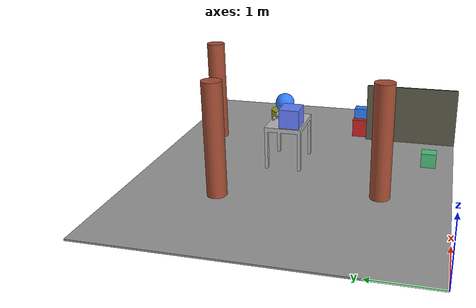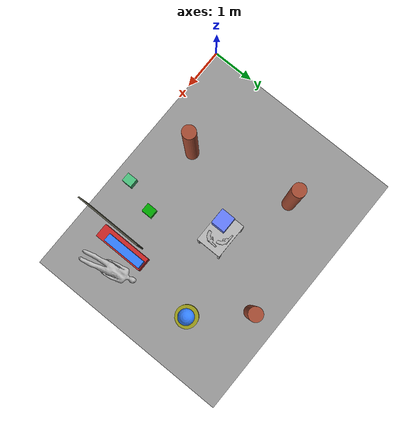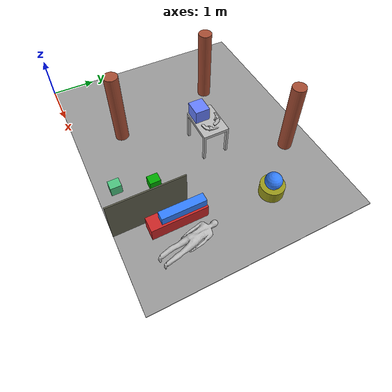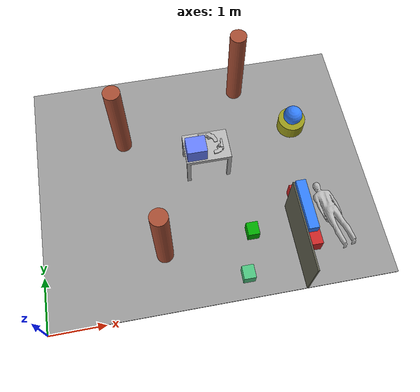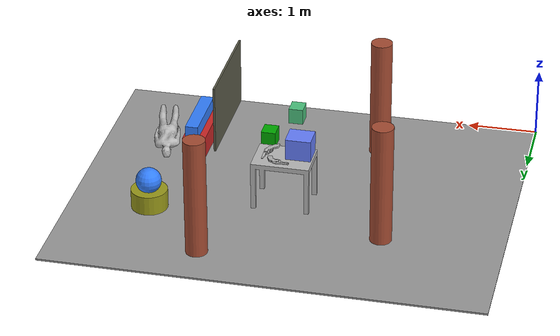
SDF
<sdf version="1.7">
 <world name="lab_real">
  <light name="sun" type="directional">
   <pose>0 0 10 0 -0 0</pose>
   <diffuse>0.8 0.8 0.8 1</diffuse>
   <specular>0.2 0.2 0.2 1</specular>
   <attenuation>
    <range>1000</range>
    <constant>0.9</constant>
    <linear>0.01</linear>
    <quadratic>0.001</quadratic>
   </attenuation>
   <direction>-0.5 0.1 -0.9</direction>
   <spot><inner_angle>0</inner_angle><outer_angle>0</outer_angle><falloff>0</falloff></spot>
  </light>
  <gravity>0 0 -9.8</gravity>
  <magnetic_field>6e-06 2.3e-05 -4.2e-05</magnetic_field>
  <atmosphere type="adiabatic"/>
  <physics type="ode">
   <max_step_size>0.001</max_step_size>
   <real_time_factor>1</real_time_factor>
   <real_time_update_rate>1000</real_time_update_rate>
  </physics>
  <scene><ambient>0.4 0.4 0.4 1</ambient><background>0.7 0.7 0.7 1</background><shadows>1</shadows></scene>
  <spherical_coordinates>
   <surface_model>EARTH_WGS84</surface_model>
   <latitude_deg>0</latitude_deg>
   <longitude_deg>0</longitude_deg>
   <elevation>0</elevation>
   <heading_deg>0</heading_deg>
  </spherical_coordinates>
  <include><uri>model://lab_base</uri></include>
  <plugin name="ros_interface_plugin" filename="librotors_gazebo_ros_interface_plugin.so"/>
  <plugin name="gazebo_gt_plugin" filename="libgazebo_gt.so"/>
 </world>
</sdf>

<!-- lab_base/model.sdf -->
<sdf version='1.7'>
  <model name='lab_base'>
    <link name='link_0'>
      <inertial>
        <mass>0.0486805</mass>
        <inertia>
          <ixx>0.00064897</ixx>
          <ixy>0</ixy>
          <ixz>0</ixz>
          <iyy>0.00064897</iyy>
          <iyz>0</iyz>
          <izz>0.00064897</izz>
        </inertia>
        <pose>0 0 0 0 -0 0</pose>
      </inertial>
      <pose>5.02238 3.25948 0.425093 0 -0 0</pose>
      <gravity>1</gravity>
      <self_collide>0</self_collide>
      <kinematic>0</kinematic>
      <enable_wind>0</enable_wind>
      <visual name='visual'>
        <pose>0 0 0 0 -0 0</pose>
        <geometry>
          <sphere>
            <radius>0.18256</radius>
          </sphere>
        </geometry>
        <material>
          <lighting>1</lighting>
          <script>
            <uri>file://media/materials/scripts/gazebo.material</uri>
            <name>Gazebo/Grey</name>
          </script>
          <shader type='pixel'>
            <normal_map>__default__</normal_map>
          </shader>
          <ambient>0.2 0.5 1 1</ambient>
          <diffuse>0.2 0.5 1 1</diffuse>
          <specular>0.01 0.01 0.01 1</specular>
          <emissive>0 0 0 1</emissive>
        </material>
        <transparency>0</transparency>
        <cast_shadows>1</cast_shadows>
      </visual>
      <collision name='collision'>
        <laser_retro>0</laser_retro>
        <max_contacts>10</max_contacts>
        <pose>0 0 0 0 -0 0</pose>
        <geometry>
          <sphere>
            <radius>0.18256</radius>
          </sphere>
        </geometry>
        <surface>
          <friction>
            <ode>
              <mu>1</mu>
              <mu2>1</mu2>
              <fdir1>0 0 0</fdir1>
              <slip1>0</slip1>
              <slip2>0</slip2>
            </ode>
            <torsional>
              <coefficient>1</coefficient>
              <patch_radius>0</patch_radius>
              <surface_radius>0</surface_radius>
              <use_patch_radius>1</use_patch_radius>
              <ode>
                <slip>0</slip>
              </ode>
            </torsional>
          </friction>
          <bounce>
            <restitution_coefficient>0</restitution_coefficient>
            <threshold>1e+06</threshold>
          </bounce>
          <contact>
            <collide_without_contact>0</collide_without_contact>
            <collide_without_contact_bitmask>1</collide_without_contact_bitmask>
            <collide_bitmask>1</collide_bitmask>
            <ode>
              <soft_cfm>0</soft_cfm>
              <soft_erp>0.2</soft_erp>
              <kp>1e+13</kp>
              <kd>1</kd>
              <max_vel>0.01</max_vel>
              <min_depth>0</min_depth>
            </ode>
            <bullet>
              <split_impulse>1</split_impulse>
              <split_impulse_penetration_threshold>-0.01</split_impulse_penetration_threshold>
              <soft_cfm>0</soft_cfm>
              <soft_erp>0.2</soft_erp>
              <kp>1e+13</kp>
              <kd>1</kd>
            </bullet>
          </contact>
        </surface>
      </collision>
    </link>
    <link name='link_1'>
      <inertial>
        <mass>0.758123</mass>
        <inertia>
          <ixx>1.52606</ixx>
          <ixy>0</ixy>
          <ixz>0</ixz>
          <iyy>2.40105</iyy>
          <iyz>0</iyz>
          <izz>3.92704</izz>
        </inertia>
        <pose>0 0 0 0 -0 0</pose>
      </inertial>
      <pose>3.0758 2.46292 0 -3.14159 0 0</pose>
      <gravity>1</gravity>
      <self_collide>0</self_collide>
      <kinematic>0</kinematic>
      <enable_wind>0</enable_wind>
      <visual name='visual'>
        <pose>0 0 0 0 -0 0</pose>
        <geometry>
          <box>
            <size>6.16479 4.91475 0.024663</size>
          </box>
        </geometry>
        <material>
          <lighting>1</lighting>
          <script>
            <uri>file://media/materials/scripts/gazebo.material</uri>
            <name>Gazebo/Grey</name>
          </script>
          <shader type='pixel'>
            <normal_map>__default__</normal_map>
          </shader>
          <emissive>0 0 0 1</emissive>
          <ambient>0.3 0.3 0.3 1</ambient>
          <diffuse>0.7 0.7 0.7 1</diffuse>
          <specular>0.01 0.01 0.01 1</specular>
        </material>
        <transparency>0</transparency>
        <cast_shadows>1</cast_shadows>
      </visual>
      <collision name='collision'>
        <laser_retro>0</laser_retro>
        <max_contacts>10</max_contacts>
        <pose>0 0 0 0 -0 0</pose>
        <geometry>
          <box>
            <size>6.16479 4.91475 0.024663</size>
          </box>
        </geometry>
        <surface>
          <friction>
            <ode>
              <mu>1</mu>
              <mu2>1</mu2>
              <fdir1>0 0 0</fdir1>
              <slip1>0</slip1>
              <slip2>0</slip2>
            </ode>
            <torsional>
              <coefficient>1</coefficient>
              <patch_radius>0</patch_radius>
              <surface_radius>0</surface_radius>
              <use_patch_radius>1</use_patch_radius>
              <ode>
                <slip>0</slip>
              </ode>
            </torsional>
          </friction>
          <bounce>
            <restitution_coefficient>0</restitution_coefficient>
            <threshold>1e+06</threshold>
          </bounce>
          <contact>
            <collide_without_contact>0</collide_without_contact>
            <collide_without_contact_bitmask>1</collide_without_contact_bitmask>
            <collide_bitmask>1</collide_bitmask>
            <ode>
              <soft_cfm>0</soft_cfm>
              <soft_erp>0.2</soft_erp>
              <kp>1e+13</kp>
              <kd>1</kd>
              <max_vel>0.01</max_vel>
              <min_depth>0</min_depth>
            </ode>
            <bullet>
              <split_impulse>1</split_impulse>
              <split_impulse_penetration_threshold>-0.01</split_impulse_penetration_threshold>
              <soft_cfm>0</soft_cfm>
              <soft_erp>0.2</soft_erp>
              <kp>1e+13</kp>
              <kd>1</kd>
            </bullet>
          </contact>
        </surface>
      </collision>
    </link>
    <link name='link_1_clone_clone'>
      <inertial>
        <mass>0.0463262</mass>
        <inertia>
          <ixx>0.00964904</ixx>
          <ixy>0</ixy>
          <ixz>0</ixz>
          <iyy>0.0040622</iyy>
          <iyz>0</iyz>
          <izz>0.0137051</izz>
        </inertia>
        <pose>0 0 0 0 -0 0</pose>
      </inertial>
      <pose>4.50356 0.791954 0.525149 3.14159 1.57079 3.14159</pose>
      <gravity>1</gravity>
      <self_collide>0</self_collide>
      <kinematic>0</kinematic>
      <enable_wind>0</enable_wind>
      <visual name='visual'>
        <pose>0 0 0 0 -0 0</pose>
        <geometry>
          <box>
            <size>1.0254 1.58071 0.02808</size>
          </box>
        </geometry>
        <material>
          <lighting>1</lighting>
          <script>
            <uri>file://media/materials/scripts/gazebo.material</uri>
            <name>Gazebo/Grey</name>
          </script>
          <shader type='pixel'>
            <normal_map>__default__</normal_map>
          </shader>
          <emissive>0 0 0 1</emissive>
          <diffuse>0.367 0.367 0.3 0</diffuse>
          <ambient>0.367 0.367 0.3 1</ambient>
          <specular>0.01 0.01 0.01 1</specular>
        </material>
        <transparency>0</transparency>
        <cast_shadows>1</cast_shadows>
      </visual>
      <collision name='collision'>
        <laser_retro>0</laser_retro>
        <max_contacts>10</max_contacts>
        <pose>0 0 0 0 -0 0</pose>
        <geometry>
          <box>
            <size>1.0254 1.58071 0.02808</size>
          </box>
        </geometry>
        <surface>
          <friction>
            <ode>
              <mu>1</mu>
              <mu2>1</mu2>
              <fdir1>0 0 0</fdir1>
              <slip1>0</slip1>
              <slip2>0</slip2>
            </ode>
            <torsional>
              <coefficient>1</coefficient>
              <patch_radius>0</patch_radius>
              <surface_radius>0</surface_radius>
              <use_patch_radius>1</use_patch_radius>
              <ode>
                <slip>0</slip>
              </ode>
            </torsional>
          </friction>
          <bounce>
            <restitution_coefficient>0</restitution_coefficient>
            <threshold>1e+06</threshold>
          </bounce>
          <contact>
            <collide_without_contact>0</collide_without_contact>
            <collide_without_contact_bitmask>1</collide_without_contact_bitmask>
            <collide_bitmask>1</collide_bitmask>
            <ode>
              <soft_cfm>0</soft_cfm>
              <soft_erp>0.2</soft_erp>
              <kp>1e+13</kp>
              <kd>1</kd>
              <max_vel>0.01</max_vel>
              <min_depth>0</min_depth>
            </ode>
            <bullet>
              <split_impulse>1</split_impulse>
              <split_impulse_penetration_threshold>-0.01</split_impulse_penetration_threshold>
              <soft_cfm>0</soft_cfm>
              <soft_erp>0.2</soft_erp>
              <kp>1e+13</kp>
              <kd>1</kd>
            </bullet>
          </contact>
        </surface>
      </collision>
    </link>
    <link name='link_3'>
      <inertial>
        <mass>0</mass>
        <inertia>
          <ixx>0</ixx>
          <ixy>0</ixy>
          <ixz>0</ixz>
          <iyy>0</iyy>
          <iyz>0</iyz>
          <izz>0</izz>
        </inertia>
        <pose>0 0 0 0 -0 0</pose>
      </inertial>
      <pose>3.00126 2.61431 0.867526 0 -0 0</pose>
      <self_collide>0</self_collide>
      <enable_wind>0</enable_wind>
      <kinematic>0</kinematic>
      <gravity>1</gravity>
      <visual name='visual'>
        <pose>0 0 0 0 -0 0</pose>
        <geometry>
          <box>
            <size>0.362033 0.326716 0.321011</size>
          </box>
        </geometry>
        <material>
          <lighting>1</lighting>
          <script>
            <uri>file://media/materials/scripts/gazebo.material</uri>
            <name>Gazebo/Grey</name>
          </script>
          <shader type='pixel'>
            <normal_map>__default__</normal_map>
          </shader>
          <emissive>0 0 0 1</emissive>
          <ambient>0.4 0.5 1 1</ambient>
          <diffuse>0.4 0.5 1 1</diffuse>
          <specular>0.01 0.01 0.01 1</specular>
        </material>
        <transparency>0</transparency>
        <cast_shadows>1</cast_shadows>
      </visual>
      <collision name='collision'>
        <laser_retro>0</laser_retro>
        <max_contacts>10</max_contacts>
        <pose>0 0 0 0 -0 0</pose>
        <geometry>
          <box>
            <size>0.362033 0.326716 0.321011</size>
          </box>
        </geometry>
        <surface>
          <friction>
            <ode>
              <mu>1</mu>
              <mu2>1</mu2>
              <fdir1>0 0 0</fdir1>
              <slip1>0</slip1>
              <slip2>0</slip2>
            </ode>
            <torsional>
              <coefficient>1</coefficient>
              <patch_radius>0</patch_radius>
              <surface_radius>0</surface_radius>
              <use_patch_radius>1</use_patch_radius>
              <ode>
                <slip>0</slip>
              </ode>
            </torsional>
          </friction>
          <bounce>
            <restitution_coefficient>0</restitution_coefficient>
            <threshold>1e+06</threshold>
          </bounce>
          <contact>
            <collide_without_contact>0</collide_without_contact>
            <collide_without_contact_bitmask>1</collide_without_contact_bitmask>
            <collide_bitmask>1</collide_bitmask>
            <ode>
              <soft_cfm>0</soft_cfm>
              <soft_erp>0.2</soft_erp>
              <kp>1e+13</kp>
              <kd>1</kd>
              <max_vel>0.01</max_vel>
              <min_depth>0</min_depth>
            </ode>
            <bullet>
              <split_impulse>1</split_impulse>
              <split_impulse_penetration_threshold>-0.01</split_impulse_penetration_threshold>
              <soft_cfm>0</soft_cfm>
              <soft_erp>0.2</soft_erp>
              <kp>1e+13</kp>
              <kd>1</kd>
            </bullet>
          </contact>
        </surface>
      </collision>
    </link>
    <link name='link_3_clone'>
      <inertial>
        <mass>0.0326408</mass>
        <inertia>
          <ixx>0.00251461</ixx>
          <ixy>0</ixy>
          <ixz>0</ixz>
          <iyy>0.000188212</iyy>
          <iyz>0</iyz>
          <izz>0.00251637</izz>
        </inertia>
        <pose>0 0 0 0 -0 0</pose>
      </inertial>
      <pose>4.78027 1.3623 0.424936 0 -0 0</pose>
      <self_collide>0</self_collide>
      <enable_wind>0</enable_wind>
      <kinematic>0</kinematic>
      <gravity>1</gravity>
      <visual name='visual'>
        <pose>0 0 0 0 -0 0</pose>
        <geometry>
          <box>
            <size>0.186871 0.9435 0.185129</size>
          </box>
        </geometry>
        <material>
          <lighting>1</lighting>
          <script>
            <uri>file://media/materials/scripts/gazebo.material</uri>
            <name>Gazebo/Grey</name>
          </script>
          <shader type='pixel'>
            <normal_map>__default__</normal_map>
          </shader>
          <emissive>0 0 0 1</emissive>
          <ambient>0.2 0.5 1 1</ambient>
          <diffuse>0.2 0.5 1 1</diffuse>
          <specular>0.01 0.01 0.01 1</specular>
        </material>
        <transparency>0</transparency>
        <cast_shadows>1</cast_shadows>
      </visual>
      <collision name='collision'>
        <laser_retro>0</laser_retro>
        <max_contacts>10</max_contacts>
        <pose>0 0 0 0 -0 0</pose>
        <geometry>
          <box>
            <size>0.186871 0.9435 0.185129</size>
          </box>
        </geometry>
        <surface>
          <friction>
            <ode>
              <mu>1</mu>
              <mu2>1</mu2>
              <fdir1>0 0 0</fdir1>
              <slip1>0</slip1>
              <slip2>0</slip2>
            </ode>
            <torsional>
              <coefficient>1</coefficient>
              <patch_radius>0</patch_radius>
              <surface_radius>0</surface_radius>
              <use_patch_radius>1</use_patch_radius>
              <ode>
                <slip>0</slip>
              </ode>
            </torsional>
          </friction>
          <bounce>
            <restitution_coefficient>0</restitution_coefficient>
            <threshold>1e+06</threshold>
          </bounce>
          <contact>
            <collide_without_contact>0</collide_without_contact>
            <collide_without_contact_bitmask>1</collide_without_contact_bitmask>
            <collide_bitmask>1</collide_bitmask>
            <ode>
              <soft_cfm>0</soft_cfm>
              <soft_erp>0.2</soft_erp>
              <kp>1e+13</kp>
              <kd>1</kd>
              <max_vel>0.01</max_vel>
              <min_depth>0</min_depth>
            </ode>
            <bullet>
              <split_impulse>1</split_impulse>
              <split_impulse_penetration_threshold>-0.01</split_impulse_penetration_threshold>
              <soft_cfm>0</soft_cfm>
              <soft_erp>0.2</soft_erp>
              <kp>1e+13</kp>
              <kd>1</kd>
            </bullet>
          </contact>
        </surface>
      </collision>
    </link>
    <link name='link_4_clone'>
      <inertial>
        <mass>0.0757916</mass>
        <inertia>
          <ixx>0.0017771</ixx>
          <ixy>0</ixy>
          <ixz>0</ixz>
          <iyy>0.0017771</iyy>
          <iyz>0</iyz>
          <izz>0.00256166</izz>
        </inertia>
        <pose>0 0 0 0 -0 0</pose>
      </inertial>
      <pose>5.01785 3.26172 0.15287 0 -0 0</pose>
      <self_collide>0</self_collide>
      <enable_wind>0</enable_wind>
      <kinematic>0</kinematic>
      <gravity>1</gravity>
      <visual name='visual'>
        <pose>0 0 0 0 -0 0</pose>
        <geometry>
          <cylinder>
            <radius>0.259995</radius>
            <length>0.280312</length>
          </cylinder>
        </geometry>
        <material>
          <lighting>1</lighting>
          <script>
            <uri>file://media/materials/scripts/gazebo.material</uri>
            <name>Gazebo/Grey</name>
          </script>
          <shader type='pixel'>
            <normal_map>__default__</normal_map>
          </shader>
          <emissive>0 0 0 1</emissive>
          <ambient>0.6 0.6 0.1 0</ambient>
          <diffuse>0.6 0.6 0.1 1</diffuse>
          <specular>0.01 0.01 0.01 1</specular>
        </material>
        <transparency>0</transparency>
        <cast_shadows>1</cast_shadows>
      </visual>
      <collision name='collision'>
        <laser_retro>0</laser_retro>
        <max_contacts>10</max_contacts>
        <pose>0 0 0 0 -0 0</pose>
        <geometry>
          <cylinder>
            <radius>0.259995</radius>
            <length>0.280312</length>
          </cylinder>
        </geometry>
        <surface>
          <friction>
            <ode>
              <mu>1</mu>
              <mu2>1</mu2>
              <fdir1>0 0 0</fdir1>
              <slip1>0</slip1>
              <slip2>0</slip2>
            </ode>
            <torsional>
              <coefficient>1</coefficient>
              <patch_radius>0</patch_radius>
              <surface_radius>0</surface_radius>
              <use_patch_radius>1</use_patch_radius>
              <ode>
                <slip>0</slip>
              </ode>
            </torsional>
          </friction>
          <bounce>
            <restitution_coefficient>0</restitution_coefficient>
            <threshold>1e+06</threshold>
          </bounce>
          <contact>
            <collide_without_contact>0</collide_without_contact>
            <collide_without_contact_bitmask>1</collide_without_contact_bitmask>
            <collide_bitmask>1</collide_bitmask>
            <ode>
              <soft_cfm>0</soft_cfm>
              <soft_erp>0.2</soft_erp>
              <kp>1e+13</kp>
              <kd>1</kd>
              <max_vel>0.01</max_vel>
              <min_depth>0</min_depth>
            </ode>
            <bullet>
              <split_impulse>1</split_impulse>
              <split_impulse_penetration_threshold>-0.01</split_impulse_penetration_threshold>
              <soft_cfm>0</soft_cfm>
              <soft_erp>0.2</soft_erp>
              <kp>1e+13</kp>
              <kd>1</kd>
            </bullet>
          </contact>
        </surface>
      </collision>
    </link>
    <link name='link_5'>
      <inertial>
        <mass>0.123138</mass>
        <inertia>
          <ixx>0.0157175</ixx>
          <ixy>0</ixy>
          <ixz>0</ixz>
          <iyy>0.00211369</iyy>
          <iyz>0</iyz>
          <izz>0.0157573</izz>
        </inertia>
        <pose>0 0 0 0 -0 0</pose>
      </inertial>
      <pose>4.753 1.25194 0.170259 0 -0 0</pose>
      <self_collide>0</self_collide>
      <enable_wind>0</enable_wind>
      <kinematic>0</kinematic>
      <gravity>1</gravity>
      <visual name='visual'>
        <pose>0 0 0 0 -0 0</pose>
        <geometry>
          <box>
            <size>0.323928 1.1961 0.317889</size>
          </box>
        </geometry>
        <material>
          <lighting>1</lighting>
          <script>
            <uri>file://media/materials/scripts/gazebo.material</uri>
            <name>Gazebo/Red</name>
          </script>
          <shader type='pixel'>
            <normal_map>__default__</normal_map>
          </shader>
          <emissive>0 0 0 1</emissive>
          <ambient>1 0.2 0 1</ambient>
          <diffuse>1 0.2 0 1</diffuse>
          <specular>0.01 0.01 0.01 1</specular>
        </material>
        <transparency>0</transparency>
        <cast_shadows>1</cast_shadows>
      </visual>
      <collision name='collision'>
        <laser_retro>0</laser_retro>
        <max_contacts>10</max_contacts>
        <pose>0 0 0 0 -0 0</pose>
        <geometry>
          <box>
            <size>0.323928 1.1961 0.317889</size>
          </box>
        </geometry>
        <surface>
          <friction>
            <ode>
              <mu>1</mu>
              <mu2>1</mu2>
              <fdir1>0 0 0</fdir1>
              <slip1>0</slip1>
              <slip2>0</slip2>
            </ode>
            <torsional>
              <coefficient>1</coefficient>
              <patch_radius>0</patch_radius>
              <surface_radius>0</surface_radius>
              <use_patch_radius>1</use_patch_radius>
              <ode>
                <slip>0</slip>
              </ode>
            </torsional>
          </friction>
          <bounce>
            <restitution_coefficient>0</restitution_coefficient>
            <threshold>1e+06</threshold>
          </bounce>
          <contact>
            <collide_without_contact>0</collide_without_contact>
            <collide_without_contact_bitmask>1</collide_without_contact_bitmask>
            <collide_bitmask>1</collide_bitmask>
            <ode>
              <soft_cfm>0</soft_cfm>
              <soft_erp>0.2</soft_erp>
              <kp>1e+13</kp>
              <kd>1</kd>
              <max_vel>0.01</max_vel>
              <min_depth>0</min_depth>
            </ode>
            <bullet>
              <split_impulse>1</split_impulse>
              <split_impulse_penetration_threshold>-0.01</split_impulse_penetration_threshold>
              <soft_cfm>0</soft_cfm>
              <soft_erp>0.2</soft_erp>
              <kp>1e+13</kp>
              <kd>1</kd>
            </bullet>
          </contact>
        </surface>
      </collision>
    </link>
    <link name='link_6'>
      <inertial>
        <mass>0.0122647</mass>
        <inertia>
          <ixx>0.00011764</ixx>
          <ixy>0</ixy>
          <ixz>0</ixz>
          <iyy>0.00010442</iyy>
          <iyz>0</iyz>
          <izz>0.00010648</izz>
        </inertia>
        <pose>0 0 0 0 -0 0</pose>
      </inertial>
      <pose>3.76938 1.17487 0.13075 0 -0 0</pose>
      <self_collide>0</self_collide>
      <enable_wind>0</enable_wind>
      <kinematic>0</kinematic>
      <gravity>1</gravity>
      <visual name='visual'>
        <pose>0 0 0 0 -0 0</pose>
        <geometry>
          <box>
            <size>0.213598 0.241991 0.237785</size>
          </box>
        </geometry>
        <material>
          <lighting>1</lighting>
          <script>
            <uri>file://media/materials/scripts/gazebo.material</uri>
            <name>Gazebo/Grey</name>
          </script>
          <shader type='pixel'>
            <normal_map>__default__</normal_map>
          </shader>
          <emissive>0 0 0 1</emissive>
          <ambient>0 0.667 0 0</ambient>
          <diffuse>0 0.667 0 1</diffuse>
          <specular>0.01 0.01 0.01 1</specular>
        </material>
        <transparency>0</transparency>
        <cast_shadows>1</cast_shadows>
      </visual>
      <collision name='collision'>
        <laser_retro>0</laser_retro>
        <max_contacts>10</max_contacts>
        <pose>0 0 0 0 -0 0</pose>
        <geometry>
          <box>
            <size>0.213598 0.241991 0.237785</size>
          </box>
        </geometry>
        <surface>
          <friction>
            <ode>
              <mu>1</mu>
              <mu2>1</mu2>
              <fdir1>0 0 0</fdir1>
              <slip1>0</slip1>
              <slip2>0</slip2>
            </ode>
            <torsional>
              <coefficient>1</coefficient>
              <patch_radius>0</patch_radius>
              <surface_radius>0</surface_radius>
              <use_patch_radius>1</use_patch_radius>
              <ode>
                <slip>0</slip>
              </ode>
            </torsional>
          </friction>
          <bounce>
            <restitution_coefficient>0</restitution_coefficient>
            <threshold>1e+06</threshold>
          </bounce>
          <contact>
            <collide_without_contact>0</collide_without_contact>
            <collide_without_contact_bitmask>1</collide_without_contact_bitmask>
            <collide_bitmask>1</collide_bitmask>
            <ode>
              <soft_cfm>0</soft_cfm>
              <soft_erp>0.2</soft_erp>
              <kp>1e+13</kp>
              <kd>1</kd>
              <max_vel>0.01</max_vel>
              <min_depth>0</min_depth>
            </ode>
            <bullet>
              <split_impulse>1</split_impulse>
              <split_impulse_penetration_threshold>-0.01</split_impulse_penetration_threshold>
              <soft_cfm>0</soft_cfm>
              <soft_erp>0.2</soft_erp>
              <kp>1e+13</kp>
              <kd>1</kd>
            </bullet>
          </contact>
        </surface>
      </collision>
    </link>
    <link name='link_6_clone'>
      <inertial>
        <mass>0.0122647</mass>
        <inertia>
          <ixx>0.00011764</ixx>
          <ixy>0</ixy>
          <ixz>0</ixz>
          <iyy>0.00010442</iyy>
          <iyz>0</iyz>
          <izz>0.00010648</izz>
        </inertia>
        <pose>0 0 0 0 -0 0</pose>
      </inertial>
      <pose>3.52606 0.408481 0.130799 0 -0 0</pose>
      <self_collide>0</self_collide>
      <enable_wind>0</enable_wind>
      <kinematic>0</kinematic>
      <gravity>1</gravity>
      <visual name='visual'>
        <pose>0 0 0 0 -0 0</pose>
        <geometry>
          <box>
            <size>0.213598 0.241991 0.237785</size>
          </box>
        </geometry>
        <material>
          <lighting>1</lighting>
          <script>
            <uri>file://media/materials/scripts/gazebo.material</uri>
            <name>Gazebo/Grey</name>
          </script>
          <shader type='pixel'>
            <normal_map>__default__</normal_map>
          </shader>
          <emissive>0 0 0 1</emissive>
          <ambient>0.4 0.767 0.498 0</ambient>
          <diffuse>0.3 0.767 0.498 1</diffuse>
          <specular>0.01 0.01 0.01 1</specular>
        </material>
        <transparency>0</transparency>
        <cast_shadows>1</cast_shadows>
      </visual>
      <collision name='collision'>
        <laser_retro>0</laser_retro>
        <max_contacts>10</max_contacts>
        <pose>0 0 0 0 -0 0</pose>
        <geometry>
          <box>
            <size>0.213598 0.241991 0.237785</size>
          </box>
        </geometry>
        <surface>
          <friction>
            <ode>
              <mu>1</mu>
              <mu2>1</mu2>
              <fdir1>0 0 0</fdir1>
              <slip1>0</slip1>
              <slip2>0</slip2>
            </ode>
            <torsional>
              <coefficient>1</coefficient>
              <patch_radius>0</patch_radius>
              <surface_radius>0</surface_radius>
              <use_patch_radius>1</use_patch_radius>
              <ode>
                <slip>0</slip>
              </ode>
            </torsional>
          </friction>
          <bounce>
            <restitution_coefficient>0</restitution_coefficient>
            <threshold>1e+06</threshold>
          </bounce>
          <contact>
            <collide_without_contact>0</collide_without_contact>
            <collide_without_contact_bitmask>1</collide_without_contact_bitmask>
            <collide_bitmask>1</collide_bitmask>
            <ode>
              <soft_cfm>0</soft_cfm>
              <soft_erp>0.2</soft_erp>
              <kp>1e+13</kp>
              <kd>1</kd>
              <max_vel>0.01</max_vel>
              <min_depth>0</min_depth>
            </ode>
            <bullet>
              <split_impulse>1</split_impulse>
              <split_impulse_penetration_threshold>-0.01</split_impulse_penetration_threshold>
              <soft_cfm>0</soft_cfm>
              <soft_erp>0.2</soft_erp>
              <kp>1e+13</kp>
              <kd>1</kd>
            </bullet>
          </contact>
        </surface>
      </collision>
    </link>
    <link name='pillar1'>
      <inertial>
        <mass>1</mass>
        <inertia>
          <ixx>0.145833</ixx>
          <ixy>0</ixy>
          <ixz>0</ixz>
          <iyy>0.145833</iyy>
          <iyz>0</iyz>
          <izz>0.125</izz>
        </inertia>
        <pose>0 0 0 0 -0 0</pose>
      </inertial>
      <self_collide>0</self_collide>
      <enable_wind>0</enable_wind>
      <kinematic>0</kinematic>
      <pose>2.15345 1.05205 0.847464 0 -0 0</pose>
      <gravity>1</gravity>
      <visual name='visual'>
        <geometry>
          <cylinder>
            <radius>0.153505</radius>
            <length>1.86852</length>
          </cylinder>
        </geometry>
        <material>
          <script>
            <name>Gazebo/Bricks</name>
            <uri>file://media/materials/scripts/gazebo.material</uri>
          </script>
          <shader type='pixel'>
            <normal_map>__default__</normal_map>
          </shader>
          <ambient>1 1 1 1</ambient>
          <diffuse>1 1 1 1</diffuse>
          <specular>0.2 0.2 0.2 1</specular>
          <emissive>0 0 0 1</emissive>
        </material>
        <pose>0 0 0 0 -0 0</pose>
        <transparency>0</transparency>
        <cast_shadows>1</cast_shadows>
      </visual>
      <collision name='collision'>
        <laser_retro>0</laser_retro>
        <max_contacts>10</max_contacts>
        <pose>0 0 0 0 -0 0</pose>
        <geometry>
          <cylinder>
            <radius>0.153505</radius>
            <length>1.86852</length>
          </cylinder>
        </geometry>
        <surface>
          <friction>
            <ode>
              <mu>1</mu>
              <mu2>1</mu2>
              <fdir1>0 0 0</fdir1>
              <slip1>0</slip1>
              <slip2>0</slip2>
            </ode>
            <torsional>
              <coefficient>1</coefficient>
              <patch_radius>0</patch_radius>
              <surface_radius>0</surface_radius>
              <use_patch_radius>1</use_patch_radius>
              <ode>
                <slip>0</slip>
              </ode>
            </torsional>
          </friction>
          <bounce>
            <restitution_coefficient>0</restitution_coefficient>
            <threshold>1e+06</threshold>
          </bounce>
          <contact>
            <collide_without_contact>0</collide_without_contact>
            <collide_without_contact_bitmask>1</collide_without_contact_bitmask>
            <collide_bitmask>1</collide_bitmask>
            <ode>
              <soft_cfm>0</soft_cfm>
              <soft_erp>0.2</soft_erp>
              <kp>1e+13</kp>
              <kd>1</kd>
              <max_vel>0.01</max_vel>
              <min_depth>0</min_depth>
            </ode>
            <bullet>
              <split_impulse>1</split_impulse>
              <split_impulse_penetration_threshold>-0.01</split_impulse_penetration_threshold>
              <soft_cfm>0</soft_cfm>
              <soft_erp>0.2</soft_erp>
              <kp>1e+13</kp>
              <kd>1</kd>
            </bullet>
          </contact>
        </surface>
      </collision>
    </link>
    <link name='pillar1_clone'>
      <inertial>
        <mass>1</mass>
        <inertia>
          <ixx>0.145833</ixx>
          <ixy>0</ixy>
          <ixz>0</ixz>
          <iyy>0.145833</iyy>
          <iyz>0</iyz>
          <izz>0.125</izz>
        </inertia>
        <pose>0 0 0 0 -0 0</pose>
      </inertial>
      <self_collide>0</self_collide>
      <enable_wind>0</enable_wind>
      <kinematic>0</kinematic>
      <pose>1.69476 3.43426 0.843943 0 -0 0</pose>
      <gravity>1</gravity>
      <visual name='visual'>
        <geometry>
          <cylinder>
            <radius>0.153505</radius>
            <length>1.86852</length>
          </cylinder>
        </geometry>
        <material>
          <script>
            <name>Gazebo/Bricks</name>
            <uri>file://media/materials/scripts/gazebo.material</uri>
          </script>
          <shader type='pixel'>
            <normal_map>__default__</normal_map>
          </shader>
          <ambient>1 1 1 1</ambient>
          <diffuse>1 1 1 1</diffuse>
          <specular>0.2 0.2 0.2 1</specular>
          <emissive>0 0 0 1</emissive>
        </material>
        <pose>0 0 0 0 -0 0</pose>
        <transparency>0</transparency>
        <cast_shadows>1</cast_shadows>
      </visual>
      <collision name='collision'>
        <laser_retro>0</laser_retro>
        <max_contacts>10</max_contacts>
        <pose>0 0 0 0 -0 0</pose>
        <geometry>
          <cylinder>
            <radius>0.153505</radius>
            <length>1.86852</length>
          </cylinder>
        </geometry>
        <surface>
          <friction>
            <ode>
              <mu>1</mu>
              <mu2>1</mu2>
              <fdir1>0 0 0</fdir1>
              <slip1>0</slip1>
              <slip2>0</slip2>
            </ode>
            <torsional>
              <coefficient>1</coefficient>
              <patch_radius>0</patch_radius>
              <surface_radius>0</surface_radius>
              <use_patch_radius>1</use_patch_radius>
              <ode>
                <slip>0</slip>
              </ode>
            </torsional>
          </friction>
          <bounce>
            <restitution_coefficient>0</restitution_coefficient>
            <threshold>1e+06</threshold>
          </bounce>
          <contact>
            <collide_without_contact>0</collide_without_contact>
            <collide_without_contact_bitmask>1</collide_without_contact_bitmask>
            <collide_bitmask>1</collide_bitmask>
            <ode>
              <soft_cfm>0</soft_cfm>
              <soft_erp>0.2</soft_erp>
              <kp>1e+13</kp>
              <kd>1</kd>
              <max_vel>0.01</max_vel>
              <min_depth>0</min_depth>
            </ode>
            <bullet>
              <split_impulse>1</split_impulse>
              <split_impulse_penetration_threshold>-0.01</split_impulse_penetration_threshold>
              <soft_cfm>0</soft_cfm>
              <soft_erp>0.2</soft_erp>
              <kp>1e+13</kp>
              <kd>1</kd>
            </bullet>
          </contact>
        </surface>
      </collision>
    </link>
    <link name='pillar1_clone_0'>
      <inertial>
        <mass>1</mass>
        <inertia>
          <ixx>0.145833</ixx>
          <ixy>0</ixy>
          <ixz>0</ixz>
          <iyy>0.145833</iyy>
          <iyz>0</iyz>
          <izz>0.125</izz>
        </inertia>
        <pose>0 0 0 0 -0 0</pose>
      </inertial>
      <self_collide>0</self_collide>
      <enable_wind>0</enable_wind>
      <kinematic>0</kinematic>
      <pose>4.07751 4.27025 0.816644 0 -0 0</pose>
      <gravity>1</gravity>
      <visual name='visual'>
        <geometry>
          <cylinder>
            <radius>0.153505</radius>
            <length>1.86852</length>
          </cylinder>
        </geometry>
        <material>
          <script>
            <name>Gazebo/Bricks</name>
            <uri>file://media/materials/scripts/gazebo.material</uri>
          </script>
          <shader type='pixel'>
            <normal_map>__default__</normal_map>
          </shader>
          <ambient>1 1 1 1</ambient>
          <diffuse>1 1 1 1</diffuse>
          <specular>0.2 0.2 0.2 1</specular>
          <emissive>0 0 0 1</emissive>
        </material>
        <pose>0 0 0 0 -0 0</pose>
        <transparency>0</transparency>
        <cast_shadows>1</cast_shadows>
      </visual>
      <collision name='collision'>
        <laser_retro>0</laser_retro>
        <max_contacts>10</max_contacts>
        <pose>0 0 0 0 -0 0</pose>
        <geometry>
          <cylinder>
            <radius>0.153505</radius>
            <length>1.86852</length>
          </cylinder>
        </geometry>
        <surface>
          <friction>
            <ode>
              <mu>1</mu>
              <mu2>1</mu2>
              <fdir1>0 0 0</fdir1>
              <slip1>0</slip1>
              <slip2>0</slip2>
            </ode>
            <torsional>
              <coefficient>1</coefficient>
              <patch_radius>0</patch_radius>
              <surface_radius>0</surface_radius>
              <use_patch_radius>1</use_patch_radius>
              <ode>
                <slip>0</slip>
              </ode>
            </torsional>
          </friction>
          <bounce>
            <restitution_coefficient>0</restitution_coefficient>
            <threshold>1e+06</threshold>
          </bounce>
          <contact>
            <collide_without_contact>0</collide_without_contact>
            <collide_without_contact_bitmask>1</collide_without_contact_bitmask>
            <collide_bitmask>1</collide_bitmask>
            <ode>
              <soft_cfm>0</soft_cfm>
              <soft_erp>0.2</soft_erp>
              <kp>1e+13</kp>
              <kd>1</kd>
              <max_vel>0.01</max_vel>
              <min_depth>0</min_depth>
            </ode>
            <bullet>
              <split_impulse>1</split_impulse>
              <split_impulse_penetration_threshold>-0.01</split_impulse_penetration_threshold>
              <soft_cfm>0</soft_cfm>
              <soft_erp>0.2</soft_erp>
              <kp>1e+13</kp>
              <kd>1</kd>
            </bullet>
          </contact>
        </surface>
      </collision>
    </link>
    <link name='gun_1'>
        <inertial>
          <pose>0 -0.1 0.95 0 -0 0</pose>
          <mass>80</mass>
          <inertia>
            <ixx>24.88</ixx>
            <ixy>0</ixy>
            <ixz>0</ixz>
            <iyy>25.73</iyy>
            <iyz>0</iyz>
            <izz>2.48</izz>
          </inertia>
        </inertial>
        <self_collide>0</self_collide>
        <enable_wind>0</enable_wind>
        <kinematic>0</kinematic>
        <visual name='visual'>
          <geometry>
            <mesh>
              <uri>model://gun/Gun.dae</uri>
              <scale>0.5 0.5 0.5</scale>
            </mesh>
            <pose>0 0 0.02 0.04 -0 0</pose>
          </geometry>
          <pose>0 0 0 0 -0 0</pose>
          <transparency>0</transparency>
          <cast_shadows>1</cast_shadows>
        </visual>
        <collision name='drugs'>
          <pose>0 0 0 0 -0 0</pose>
          <geometry>
            <box>
              <size>0.2 0.2 0.2</size>
            </box>
          </geometry>
          <max_contacts>10</max_contacts>
          <surface>
            <contact>
              <ode/>
            </contact>
            <bounce/>
            <friction>
              <torsional>
                <ode/>
              </torsional>
              <ode/>
            </friction>
          </surface>
        </collision>
      <pose>3.30005 2.89522 0.750704 -1.44394 0 0</pose>
    </link>
    <link name='gun_2'>
        <inertial>
          <pose>0 -0.1 0.95 0 -0 0</pose>
          <mass>80</mass>
          <inertia>
            <ixx>24.88</ixx>
            <ixy>0</ixy>
            <ixz>0</ixz>
            <iyy>25.73</iyy>
            <iyz>0</iyz>
            <izz>2.48</izz>
          </inertia>
        </inertial>
        <self_collide>0</self_collide>
        <enable_wind>0</enable_wind>
        <kinematic>0</kinematic>
        <visual name='visual'>
          <geometry>
            <mesh>
              <uri>model://gun/Gun.dae</uri>
              <scale>0.5 0.5 0.5</scale>
            </mesh>
            <pose>0 0 0.02 0.04 -0 0</pose>
          </geometry>
          <pose>0 0 0 0 -0 0</pose>
          <transparency>0</transparency>
          <cast_shadows>1</cast_shadows>
        </visual>
        <collision name='drugs'>
          <pose>0 0 0 0 -0 0</pose>
          <geometry>
            <box>
              <size>0.2 0.2 0.2</size>
            </box>
          </geometry>
          <max_contacts>10</max_contacts>
          <surface>
            <contact>
              <ode/>
            </contact>
            <bounce/>
            <friction>
              <torsional>
                <ode/>
              </torsional>
              <ode/>
            </friction>
          </surface>
        </collision>
      <pose>3.44008 2.62582 0.750704 -1.73527 -0.127636 -1.58281</pose>
    </link>
    <model name='nist_elevated_floor_120'>
      <static>1</static>
      <link name='nist_elevated_floor_120'>
        <pose>0 0 0 0 -0 0</pose>
        <collision name='collision'>
          <geometry>
            <mesh>
              <uri>model://nist_elevated_floor_120/meshes/nist_elevated_floor_120.dae</uri>
              <scale>0.7 0.5 0.6</scale>
            </mesh>
          </geometry>
          <max_contacts>10</max_contacts>
          <surface>
            <contact>
              <ode/>
            </contact>
            <bounce/>
            <friction>
              <torsional>
                <ode/>
              </torsional>
              <ode/>
            </friction>
          </surface>
        </collision>
        <visual name='visual'>
          <geometry>
            <mesh>
              <uri>model://nist_elevated_floor_120/meshes/nist_elevated_floor_120.dae</uri>
              <scale>0.7 0.5 0.6</scale>
            </mesh>
          </geometry>
        </visual>
        <self_collide>0</self_collide>
        <enable_wind>0</enable_wind>
        <kinematic>0</kinematic>
      </link>
      <pose>3.21076 2.71789 0 0 -0 0</pose>
    </model>
    <link name='person_1'>
        <inertial>
          <pose>0 -0.1 0.95 0 -0 0</pose>
          <mass>80</mass>
          <inertia>
            <ixx>24.88</ixx>
            <ixy>0</ixy>
            <ixz>0</ixz>
            <iyy>25.73</iyy>
            <iyz>0</iyz>
            <izz>2.48</izz>
          </inertia>
        </inertial>
        <collision name='bottom'>
          <pose>0 -0.1 0.01 0 -0 0</pose>
          <geometry>
            <box>
              <size>0.5 0.35 0.02</size>
            </box>
          </geometry>
          <max_contacts>10</max_contacts>
          <surface>
            <contact>
              <ode/>
            </contact>
            <bounce/>
            <friction>
              <torsional>
                <ode/>
              </torsional>
              <ode/>
            </friction>
          </surface>
        </collision>
        <collision name='person'>
          <pose>0 0 0.02 0.04 -0 0</pose>
          <geometry>
            <mesh>
              <uri>model://person_standing/meshes/standing.dae</uri>
              <scale>0.7 0.7 0.7</scale>
            </mesh>
          </geometry>
          <max_contacts>10</max_contacts>
          <surface>
            <contact>
              <ode/>
            </contact>
            <bounce/>
            <friction>
              <torsional>
                <ode/>
              </torsional>
              <ode/>
            </friction>
          </surface>
        </collision>
        <visual name='visual'>
          <pose>0 0 0.02 0.04 -0 0</pose>
          <geometry>
            <mesh>
              <uri>model://person_standing/meshes/standing.dae</uri>
              <scale>0.7 0.7 0.7</scale>
            </mesh>
          </geometry>
        </visual>
        <self_collide>0</self_collide>
        <enable_wind>0</enable_wind>
        <kinematic>0</kinematic>
      <pose>5.45069 0.601017 0.146431 1.5708 0 -2.91276</pose>
    </link>
    <joint name='link_1_JOINT_10' type='fixed'>
      <parent>link_1</parent>
      <child>link_3</child>
      <pose>0 0 0 0 -0 0</pose>
      <physics>
        <ode>
          <limit>
            <cfm>0</cfm>
            <erp>0.2</erp>
          </limit>
          <suspension>
            <cfm>0</cfm>
            <erp>0.2</erp>
          </suspension>
        </ode>
      </physics>
    </joint>
    <joint name='link_1_JOINT_4' type='fixed'>
      <parent>link_1</parent>
      <child>link_1_clone_clone</child>
      <pose>0 0 0 0 -0 0</pose>
      <physics>
        <ode>
          <limit>
            <cfm>0</cfm>
            <erp>0.2</erp>
          </limit>
          <suspension>
            <cfm>0</cfm>
            <erp>0.2</erp>
          </suspension>
        </ode>
      </physics>
    </joint>
    <joint name='link_1_JOINT_5' type='fixed'>
      <parent>link_1</parent>
      <child>link_3_clone</child>
      <pose>0 0 0 0 -0 0</pose>
      <physics>
        <ode>
          <limit>
            <cfm>0</cfm>
            <erp>0.2</erp>
          </limit>
          <suspension>
            <cfm>0</cfm>
            <erp>0.2</erp>
          </suspension>
        </ode>
      </physics>
    </joint>
    <joint name='link_1_JOINT_7' type='fixed'>
      <parent>link_1</parent>
      <child>link_6</child>
      <pose>0 0 0 0 -0 0</pose>
      <physics>
        <ode>
          <limit>
            <cfm>0</cfm>
            <erp>0.2</erp>
          </limit>
          <suspension>
            <cfm>0</cfm>
            <erp>0.2</erp>
          </suspension>
        </ode>
      </physics>
    </joint>
    <joint name='link_1_JOINT_8' type='fixed'>
      <parent>link_1</parent>
      <child>link_6_clone</child>
      <pose>0 0 0 0 -0 0</pose>
      <physics>
        <ode>
          <limit>
            <cfm>0</cfm>
            <erp>0.2</erp>
          </limit>
          <suspension>
            <cfm>0</cfm>
            <erp>0.2</erp>
          </suspension>
        </ode>
      </physics>
    </joint>
    <joint name='link_1_JOINT_9' type='fixed'>
      <parent>link_1</parent>
      <child>link_5</child>
      <pose>0 0 0 0 -0 0</pose>
      <physics>
        <ode>
          <limit>
            <cfm>0</cfm>
            <erp>0.2</erp>
          </limit>
          <suspension>
            <cfm>0</cfm>
            <erp>0.2</erp>
          </suspension>
        </ode>
      </physics>
    </joint>
    <static>1</static>
    <allow_auto_disable>1</allow_auto_disable>
  </model>
</sdf>
